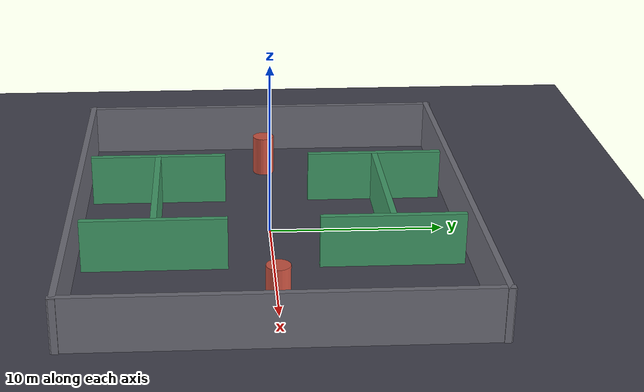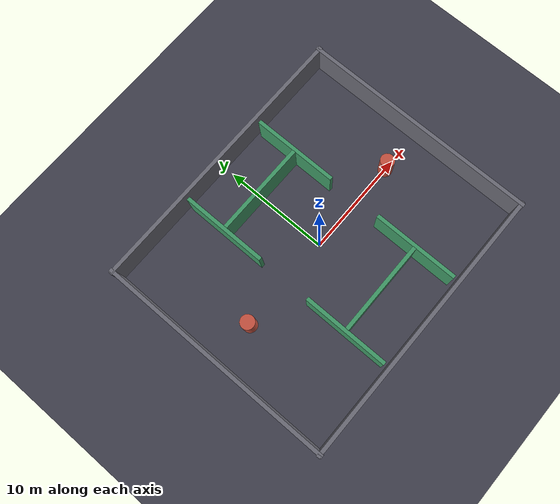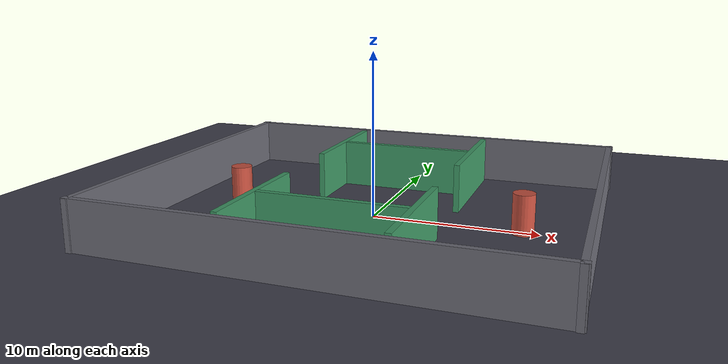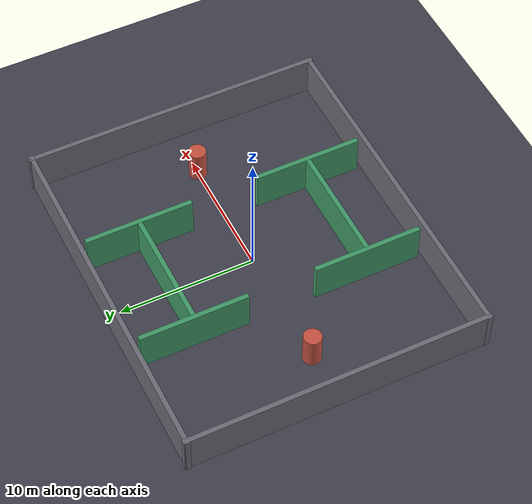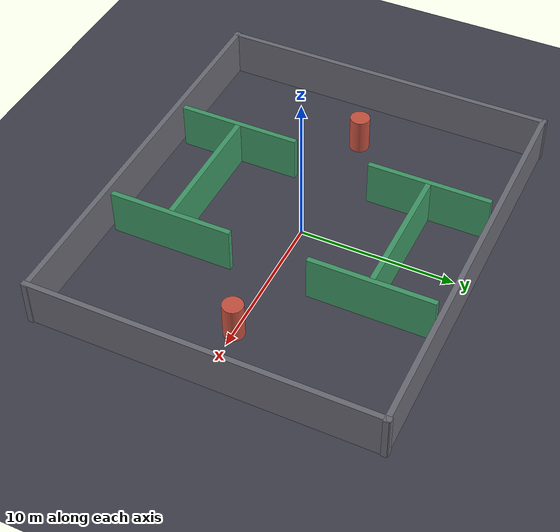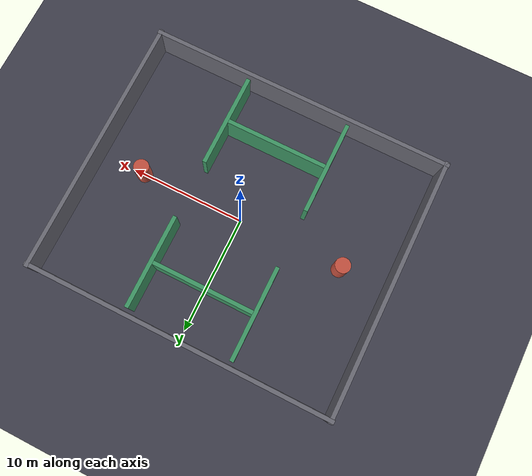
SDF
<?xml version="1.0"?>
<sdf version="1.6">
  <world name="lab_rooms_01">
    <light name="sun" type="directional">
      <pose>0 0 10 0 0 0</pose>
      <diffuse>0.8 0.8 0.8 1</diffuse>
      <specular>0.2 0.2 0.2 1</specular>
      <direction>-0.4 -0.2 -0.9</direction>
    </light>
    <gravity>0 0 -9.8</gravity>
    <magnetic_field>6e-06 2.3e-05 -4.2e-05</magnetic_field>
    <atmosphere type="adiabatic"/>
    <physics name="default_physics" default="0" type="ode">
      <max_step_size>0.001</max_step_size>
      <real_time_factor>1</real_time_factor>
      <real_time_update_rate>1000</real_time_update_rate>
    </physics>
    <scene>
      <ambient>0.45 0.45 0.45 1</ambient>
      <background>0.62 0.62 0.62 1</background>
      <shadows>1</shadows>
    </scene>

    <model name="ground_plane">
      <static>true</static>
      <link name="link">
        <collision name="collision"><geometry><plane><normal>0 0 1</normal><size>100 100</size></plane></geometry><surface><friction><ode><mu>100</mu><mu2>50</mu2></ode></friction></surface></collision>
        <visual name="visual"><geometry><plane><normal>0 0 1</normal><size>100 100</size></plane></geometry><material><ambient>0.16 0.16 0.18 1</ambient><diffuse>0.25 0.25 0.30 1</diffuse></material></visual>
      </link>
    </model>

    <!-- A 26 x 22 m floor plan. The central 8 x 4 m hall is the spawn-safe area. -->
    <model name="room_architecture">
      <static>true</static>
      <link name="north"><pose>0 11 1.5 0 0 0</pose><collision name="c"><geometry><box><size>26.5 0.35 3</size></box></geometry></collision><visual name="v"><geometry><box><size>26.5 0.35 3</size></box></geometry><material><diffuse>0.42 0.42 0.46 1</diffuse></material></visual></link>
      <link name="south"><pose>0 -11 1.5 0 0 0</pose><collision name="c"><geometry><box><size>26.5 0.35 3</size></box></geometry></collision><visual name="v"><geometry><box><size>26.5 0.35 3</size></box></geometry><material><diffuse>0.42 0.42 0.46 1</diffuse></material></visual></link>
      <link name="west"><pose>-13 0 1.5 0 0 0</pose><collision name="c"><geometry><box><size>0.35 22.5 3</size></box></geometry></collision><visual name="v"><geometry><box><size>0.35 22.5 3</size></box></geometry><material><diffuse>0.42 0.42 0.46 1</diffuse></material></visual></link>
      <link name="east"><pose>13 0 1.5 0 0 0</pose><collision name="c"><geometry><box><size>0.35 22.5 3</size></box></geometry></collision><visual name="v"><geometry><box><size>0.35 22.5 3</size></box></geometry><material><diffuse>0.42 0.42 0.46 1</diffuse></material></visual></link>
      <link name="left_upper_partition"><pose>-4.5 6.5 1.5 0 0 0</pose><collision name="c"><geometry><box><size>0.35 8 3</size></box></geometry></collision><visual name="v"><geometry><box><size>0.35 8 3</size></box></geometry><material><diffuse>0.25 0.60 0.40 1</diffuse></material></visual></link>
      <link name="left_lower_partition"><pose>-4.5 -6.5 1.5 0 0 0</pose><collision name="c"><geometry><box><size>0.35 8 3</size></box></geometry></collision><visual name="v"><geometry><box><size>0.35 8 3</size></box></geometry><material><diffuse>0.25 0.60 0.40 1</diffuse></material></visual></link>
      <link name="right_upper_partition"><pose>4.5 6.5 1.5 0 0 0</pose><collision name="c"><geometry><box><size>0.35 8 3</size></box></geometry></collision><visual name="v"><geometry><box><size>0.35 8 3</size></box></geometry><material><diffuse>0.25 0.60 0.40 1</diffuse></material></visual></link>
      <link name="right_lower_partition"><pose>4.5 -6.5 1.5 0 0 0</pose><collision name="c"><geometry><box><size>0.35 8 3</size></box></geometry></collision><visual name="v"><geometry><box><size>0.35 8 3</size></box></geometry><material><diffuse>0.25 0.60 0.40 1</diffuse></material></visual></link>
      <link name="north_room_divider"><pose>0 6.5 1.5 0 0 0</pose><collision name="c"><geometry><box><size>8.7 0.35 3</size></box></geometry></collision><visual name="v"><geometry><box><size>8.7 0.35 3</size></box></geometry><material><diffuse>0.25 0.60 0.40 1</diffuse></material></visual></link>
      <link name="south_room_divider"><pose>0 -6.5 1.5 0 0 0</pose><collision name="c"><geometry><box><size>8.7 0.35 3</size></box></geometry></collision><visual name="v"><geometry><box><size>8.7 0.35 3</size></box></geometry><material><diffuse>0.25 0.60 0.40 1</diffuse></material></visual></link>
      <link name="landmark_west"><pose>-9 0 1.2 0 0 0</pose><collision name="c"><geometry><cylinder><radius>0.65</radius><length>2.4</length></cylinder></geometry></collision><visual name="v"><geometry><cylinder><radius>0.65</radius><length>2.4</length></cylinder></geometry><material><diffuse>0.78 0.32 0.25 1</diffuse></material></visual></link>
      <link name="landmark_east"><pose>9 0 1.2 0 0 0</pose><collision name="c"><geometry><cylinder><radius>0.65</radius><length>2.4</length></cylinder></geometry></collision><visual name="v"><geometry><cylinder><radius>0.65</radius><length>2.4</length></cylinder></geometry><material><diffuse>0.78 0.32 0.25 1</diffuse></material></visual></link>
    </model>
  </world>
</sdf>
